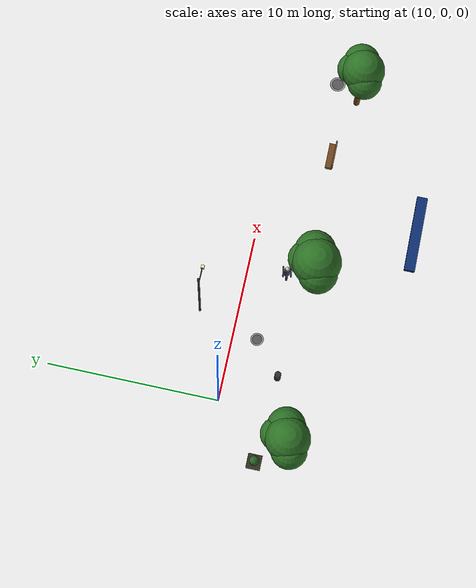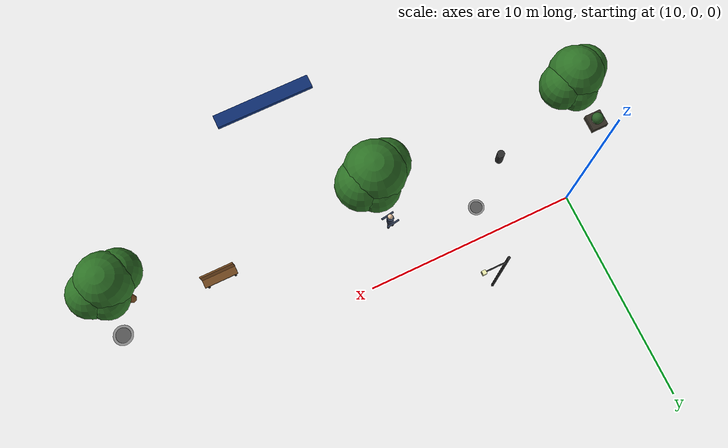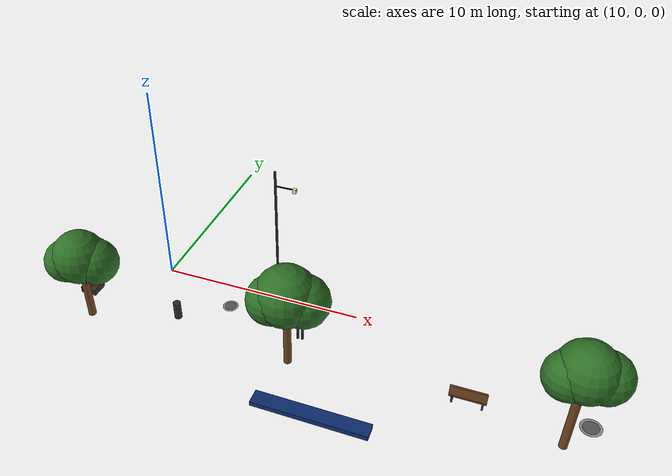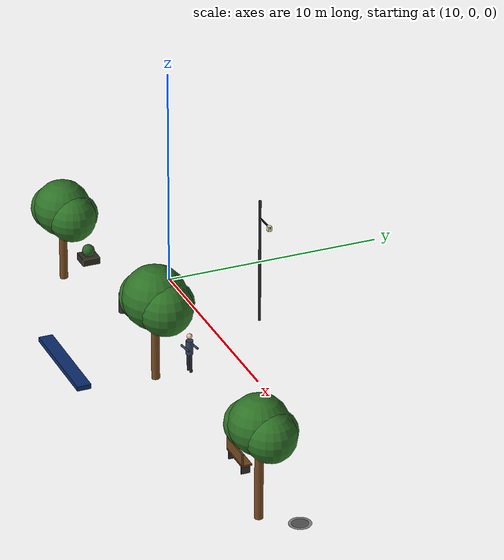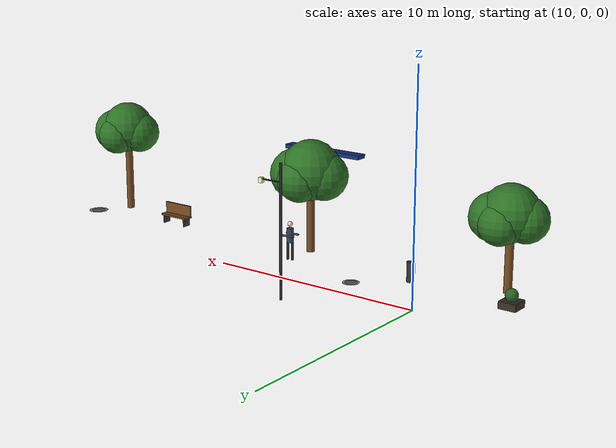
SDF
<sdf version="1.6">
 <world name="sidewalk_avenue">
  <model name="tree_1">
   <pose>8.000 -4.250 0.000 0.000 0.000 0.000</pose>
   <static>true</static>
   <link name="link">
    <collision name="cylinder_trunk_collision">
     <pose>0.000 0.000 1.500 0.000 0.000 0.000</pose>
     <geometry><cylinder><radius>0.180</radius><length>3.000</length></cylinder></geometry>
    </collision>
    <visual name="cylinder_trunk_visual">
     <pose>0.000 0.000 1.500 0.000 0.000 0.000</pose>
     <geometry><cylinder><radius>0.180</radius><length>3.000</length></cylinder></geometry>
     <material>
      <ambient>0.360 0.224 0.096 1.000</ambient>
      <diffuse>0.450 0.280 0.120 1.000</diffuse>
      <specular>0.050 0.050 0.050 1.000</specular>
     </material>
    </visual>
    <visual name="canopy_visual_0">
     <pose>0.000 0.000 3.480 0.000 0.000 0.000</pose>
     <geometry><sphere><radius>1.250</radius></sphere></geometry>
     <material>
      <ambient>0.144 0.360 0.120 1.000</ambient>
      <diffuse>0.180 0.450 0.150 1.000</diffuse>
      <specular>0.050 0.050 0.050 1.000</specular>
     </material>
    </visual>
    <visual name="canopy_visual_1">
     <pose>0.700 0.200 3.240 0.000 0.000 0.000</pose>
     <geometry><sphere><radius>1.062</radius></sphere></geometry>
     <material>
      <ambient>0.144 0.360 0.120 1.000</ambient>
      <diffuse>0.180 0.450 0.150 1.000</diffuse>
      <specular>0.050 0.050 0.050 1.000</specular>
     </material>
    </visual>
    <visual name="canopy_visual_2">
     <pose>-0.600 -0.200 3.240 0.000 0.000 0.000</pose>
     <geometry><sphere><radius>1.000</radius></sphere></geometry>
     <material>
      <ambient>0.144 0.360 0.120 1.000</ambient>
      <diffuse>0.180 0.450 0.150 1.000</diffuse>
      <specular>0.050 0.050 0.050 1.000</specular>
     </material>
    </visual>
    <visual name="canopy_visual_3">
     <pose>0.200 0.600 3.120 0.000 0.000 0.000</pose>
     <geometry><sphere><radius>0.938</radius></sphere></geometry>
     <material>
      <ambient>0.144 0.360 0.120 1.000</ambient>
      <diffuse>0.180 0.450 0.150 1.000</diffuse>
      <specular>0.050 0.050 0.050 1.000</specular>
     </material>
    </visual>
    <collision name="canopy_collision">
     <pose>0.000 0.000 3.360 0.000 0.000 0.000</pose>
     <geometry><sphere><radius>1.500</radius></sphere></geometry>
    </collision>
   </link>
   <plugin filename="gz-sim-label-system" name="gz::sim::systems::Label"><label>9</label></plugin>
  </model>
  <model name="tree_2">
   <pose>18.000 -3.850 0.000 0.000 0.000 0.000</pose>
   <static>true</static>
   <link name="link">
    <collision name="cylinder_trunk_collision">
     <pose>0.000 0.000 1.700 0.000 0.000 0.000</pose>
     <geometry><cylinder><radius>0.180</radius><length>3.400</length></cylinder></geometry>
    </collision>
    <visual name="cylinder_trunk_visual">
     <pose>0.000 0.000 1.700 0.000 0.000 0.000</pose>
     <geometry><cylinder><radius>0.180</radius><length>3.400</length></cylinder></geometry>
     <material>
      <ambient>0.360 0.224 0.096 1.000</ambient>
      <diffuse>0.450 0.280 0.120 1.000</diffuse>
      <specular>0.050 0.050 0.050 1.000</specular>
     </material>
    </visual>
    <visual name="canopy_visual_0">
     <pose>0.000 0.000 3.880 0.000 0.000 0.000</pose>
     <geometry><sphere><radius>1.400</radius></sphere></geometry>
     <material>
      <ambient>0.144 0.360 0.120 1.000</ambient>
      <diffuse>0.180 0.450 0.150 1.000</diffuse>
      <specular>0.050 0.050 0.050 1.000</specular>
     </material>
    </visual>
    <visual name="canopy_visual_1">
     <pose>0.700 0.200 3.640 0.000 0.000 0.000</pose>
     <geometry><sphere><radius>1.190</radius></sphere></geometry>
     <material>
      <ambient>0.144 0.360 0.120 1.000</ambient>
      <diffuse>0.180 0.450 0.150 1.000</diffuse>
      <specular>0.050 0.050 0.050 1.000</specular>
     </material>
    </visual>
    <visual name="canopy_visual_2">
     <pose>-0.600 -0.200 3.640 0.000 0.000 0.000</pose>
     <geometry><sphere><radius>1.120</radius></sphere></geometry>
     <material>
      <ambient>0.144 0.360 0.120 1.000</ambient>
      <diffuse>0.180 0.450 0.150 1.000</diffuse>
      <specular>0.050 0.050 0.050 1.000</specular>
     </material>
    </visual>
    <visual name="canopy_visual_3">
     <pose>0.200 0.600 3.520 0.000 0.000 0.000</pose>
     <geometry><sphere><radius>1.050</radius></sphere></geometry>
     <material>
      <ambient>0.144 0.360 0.120 1.000</ambient>
      <diffuse>0.180 0.450 0.150 1.000</diffuse>
      <specular>0.050 0.050 0.050 1.000</specular>
     </material>
    </visual>
    <collision name="canopy_collision">
     <pose>0.000 0.000 3.760 0.000 0.000 0.000</pose>
     <geometry><sphere><radius>1.680</radius></sphere></geometry>
    </collision>
   </link>
   <plugin filename="gz-sim-label-system" name="gz::sim::systems::Label"><label>9</label></plugin>
  </model>
  <model name="tree_3">
   <pose>30.000 -4.250 0.000 0.000 0.000 0.000</pose>
   <static>true</static>
   <link name="link">
    <collision name="cylinder_trunk_collision">
     <pose>0.000 0.000 1.900 0.000 0.000 0.000</pose>
     <geometry><cylinder><radius>0.180</radius><length>3.800</length></cylinder></geometry>
    </collision>
    <visual name="cylinder_trunk_visual">
     <pose>0.000 0.000 1.900 0.000 0.000 0.000</pose>
     <geometry><cylinder><radius>0.180</radius><length>3.800</length></cylinder></geometry>
     <material>
      <ambient>0.360 0.224 0.096 1.000</ambient>
      <diffuse>0.450 0.280 0.120 1.000</diffuse>
      <specular>0.050 0.050 0.050 1.000</specular>
     </material>
    </visual>
    <visual name="canopy_visual_0">
     <pose>0.000 0.000 4.280 0.000 0.000 0.000</pose>
     <geometry><sphere><radius>1.250</radius></sphere></geometry>
     <material>
      <ambient>0.144 0.360 0.120 1.000</ambient>
      <diffuse>0.180 0.450 0.150 1.000</diffuse>
      <specular>0.050 0.050 0.050 1.000</specular>
     </material>
    </visual>
    <visual name="canopy_visual_1">
     <pose>0.700 0.200 4.040 0.000 0.000 0.000</pose>
     <geometry><sphere><radius>1.062</radius></sphere></geometry>
     <material>
      <ambient>0.144 0.360 0.120 1.000</ambient>
      <diffuse>0.180 0.450 0.150 1.000</diffuse>
      <specular>0.050 0.050 0.050 1.000</specular>
     </material>
    </visual>
    <visual name="canopy_visual_2">
     <pose>-0.600 -0.200 4.040 0.000 0.000 0.000</pose>
     <geometry><sphere><radius>1.000</radius></sphere></geometry>
     <material>
      <ambient>0.144 0.360 0.120 1.000</ambient>
      <diffuse>0.180 0.450 0.150 1.000</diffuse>
      <specular>0.050 0.050 0.050 1.000</specular>
     </material>
    </visual>
    <visual name="canopy_visual_3">
     <pose>0.200 0.600 3.920 0.000 0.000 0.000</pose>
     <geometry><sphere><radius>0.938</radius></sphere></geometry>
     <material>
      <ambient>0.144 0.360 0.120 1.000</ambient>
      <diffuse>0.180 0.450 0.150 1.000</diffuse>
      <specular>0.050 0.050 0.050 1.000</specular>
     </material>
    </visual>
    <collision name="canopy_collision">
     <pose>0.000 0.000 4.160 0.000 0.000 0.000</pose>
     <geometry><sphere><radius>1.500</radius></sphere></geometry>
    </collision>
   </link>
   <plugin filename="gz-sim-label-system" name="gz::sim::systems::Label"><label>9</label></plugin>
  </model>
  <model name="lamp_1">
   <pose>15.000 2.200 0.000 0.000 0.000 0.000</pose>
   <static>true</static>
   <link name="link">
    <collision name="pole_collision">
     <pose>0.000 0.000 2.900 0.000 0.000 0.000</pose>
     <geometry><cylinder><radius>0.060</radius><length>5.800</length></cylinder></geometry>
    </collision>
    <visual name="pole_visual">
     <pose>0.000 0.000 2.900 0.000 0.000 0.000</pose>
     <geometry><cylinder><radius>0.060</radius><length>5.800</length></cylinder></geometry>
     <material>
      <ambient>0.120 0.120 0.120 1.000</ambient>
      <diffuse>0.150 0.150 0.150 1.000</diffuse>
      <specular>0.050 0.050 0.050 1.000</specular>
     </material>
    </visual>
    <visual name="arm_visual">
     <pose>0.550 0.000 5.000 0.000 0.000 0.000</pose>
     <geometry><box><size>1.100 0.050 0.050</size></box></geometry>
     <material>
      <ambient>0.120 0.120 0.120 1.000</ambient>
      <diffuse>0.150 0.150 0.150 1.000</diffuse>
      <specular>0.050 0.050 0.050 1.000</specular>
     </material>
    </visual>
    <visual name="lamp_visual">
     <pose>1.000 0.000 4.950 0.000 0.000 0.000</pose>
     <geometry><box><size>0.180 0.180 0.220</size></box></geometry>
     <material>
      <ambient>0.760 0.760 0.560 1.000</ambient>
      <diffuse>0.950 0.950 0.700 1.000</diffuse>
      <specular>0.050 0.050 0.050 1.000</specular>
     </material>
    </visual>
   </link>
   <plugin filename="gz-sim-label-system" name="gz::sim::systems::Label"><label>6</label></plugin>
  </model>
  <model name="bench_1">
   <pose>26.000 -3.400 0.000 0.000 0.000 0.000</pose>
   <static>true</static>
   <link name="link">
    <collision name="seat_collision">
     <pose>0.000 0.000 0.420 0.000 0.000 0.000</pose>
     <geometry><box><size>1.600 0.450 0.080</size></box></geometry>
    </collision>
    <visual name="seat_visual">
     <pose>0.000 0.000 0.420 0.000 0.000 0.000</pose>
     <geometry><box><size>1.600 0.450 0.080</size></box></geometry>
     <material>
      <ambient>0.360 0.224 0.096 1.000</ambient>
      <diffuse>0.450 0.280 0.120 1.000</diffuse>
      <specular>0.050 0.050 0.050 1.000</specular>
     </material>
    </visual>
    <collision name="back_collision">
     <pose>0.000 -0.180 0.720 0.000 0.000 0.000</pose>
     <geometry><box><size>1.600 0.080 0.550</size></box></geometry>
    </collision>
    <visual name="back_visual">
     <pose>0.000 -0.180 0.720 0.000 0.000 0.000</pose>
     <geometry><box><size>1.600 0.080 0.550</size></box></geometry>
     <material>
      <ambient>0.360 0.224 0.096 1.000</ambient>
      <diffuse>0.450 0.280 0.120 1.000</diffuse>
      <specular>0.050 0.050 0.050 1.000</specular>
     </material>
    </visual>
    <collision name="leg1_collision">
     <pose>-0.650 0.000 0.225 0.000 0.000 0.000</pose>
     <geometry><box><size>0.080 0.400 0.450</size></box></geometry>
    </collision>
    <visual name="leg1_visual">
     <pose>-0.650 0.000 0.225 0.000 0.000 0.000</pose>
     <geometry><box><size>0.080 0.400 0.450</size></box></geometry>
     <material>
      <ambient>0.160 0.160 0.160 1.000</ambient>
      <diffuse>0.200 0.200 0.200 1.000</diffuse>
      <specular>0.050 0.050 0.050 1.000</specular>
     </material>
    </visual>
    <collision name="leg2_collision">
     <pose>0.650 0.000 0.225 0.000 0.000 0.000</pose>
     <geometry><box><size>0.080 0.400 0.450</size></box></geometry>
    </collision>
    <visual name="leg2_visual">
     <pose>0.650 0.000 0.225 0.000 0.000 0.000</pose>
     <geometry><box><size>0.080 0.400 0.450</size></box></geometry>
     <material>
      <ambient>0.160 0.160 0.160 1.000</ambient>
      <diffuse>0.200 0.200 0.200 1.000</diffuse>
      <specular>0.050 0.050 0.050 1.000</specular>
     </material>
    </visual>
   </link>
   <plugin filename="gz-sim-label-system" name="gz::sim::systems::Label"><label>3</label></plugin>
  </model>
  <model name="trash_1">
   <pose>12.000 -3.000 0.000 0.000 0.000 0.000</pose>
   <static>true</static>
   <link name="link">
    <collision name="bin_collision">
     <pose>0.000 0.000 0.450 0.000 0.000 0.000</pose>
     <geometry><cylinder><radius>0.180</radius><length>0.900</length></cylinder></geometry>
    </collision>
    <visual name="bin_visual">
     <pose>0.000 0.000 0.450 0.000 0.000 0.000</pose>
     <geometry><cylinder><radius>0.180</radius><length>0.900</length></cylinder></geometry>
     <material>
      <ambient>0.144 0.144 0.144 1.000</ambient>
      <diffuse>0.180 0.180 0.180 1.000</diffuse>
      <specular>0.050 0.050 0.050 1.000</specular>
     </material>
    </visual>
   </link>
   <plugin filename="gz-sim-label-system" name="gz::sim::systems::Label"><label>3</label></plugin>
  </model>
  <model name="awning_1">
   <pose>21.000 -9.000 3.400 0.000 0.000 0.000</pose>
   <static>true</static>
   <link name="link">
    <visual name="awning_visual">
     <geometry><box><size>4.500 0.600 0.200</size></box></geometry>
     <material>
      <ambient>0.040 0.144 0.360 1.000</ambient>
      <diffuse>0.050 0.180 0.450 1.000</diffuse>
      <specular>0.050 0.050 0.050 1.000</specular>
     </material>
    </visual>
   </link>
   <plugin filename="gz-sim-label-system" name="gz::sim::systems::Label"><label>3</label></plugin>
  </model>
  <model name="person_1">
   <pose>18.000 -2.300 0.000 0.000 0.000 0.150</pose>
   <static>true</static>
   <link name="link">
    <collision name="leg0_collision">
     <pose>-0.110 0.000 0.430 0.000 0.000 0.000</pose>
     <geometry><cylinder><radius>0.060</radius><length>0.860</length></cylinder></geometry>
    </collision>
    <visual name="leg0_visual">
     <pose>-0.110 0.000 0.430 0.000 0.000 0.000</pose>
     <geometry><cylinder><radius>0.060</radius><length>0.860</length></cylinder></geometry>
     <material>
      <ambient>0.120 0.120 0.144 1.000</ambient>
      <diffuse>0.150 0.150 0.180 1.000</diffuse>
      <specular>0.050 0.050 0.050 1.000</specular>
     </material>
    </visual>
    <collision name="leg1_collision">
     <pose>0.110 0.000 0.430 0.000 0.000 0.000</pose>
     <geometry><cylinder><radius>0.060</radius><length>0.860</length></cylinder></geometry>
    </collision>
    <visual name="leg1_visual">
     <pose>0.110 0.000 0.430 0.000 0.000 0.000</pose>
     <geometry><cylinder><radius>0.060</radius><length>0.860</length></cylinder></geometry>
     <material>
      <ambient>0.120 0.120 0.144 1.000</ambient>
      <diffuse>0.150 0.150 0.180 1.000</diffuse>
      <specular>0.050 0.050 0.050 1.000</specular>
     </material>
    </visual>
    <collision name="torso_collision">
     <pose>0.000 0.000 1.150 0.000 0.000 0.000</pose>
     <geometry><cylinder><radius>0.160</radius><length>0.650</length></cylinder></geometry>
    </collision>
    <visual name="torso_visual">
     <pose>0.000 0.000 1.150 0.000 0.000 0.000</pose>
     <geometry><cylinder><radius>0.160</radius><length>0.650</length></cylinder></geometry>
     <material>
      <ambient>0.160 0.200 0.280 1.000</ambient>
      <diffuse>0.200 0.250 0.350 1.000</diffuse>
      <specular>0.050 0.050 0.050 1.000</specular>
     </material>
    </visual>
    <collision name="head_collision">
     <pose>0.000 0.000 1.680 0.000 0.000 0.000</pose>
     <geometry><sphere><radius>0.120</radius></sphere></geometry>
    </collision>
    <visual name="head_visual">
     <pose>0.000 0.000 1.680 0.000 0.000 0.000</pose>
     <geometry><sphere><radius>0.120</radius></sphere></geometry>
     <material>
      <ambient>0.760 0.640 0.520 1.000</ambient>
      <diffuse>0.950 0.800 0.650 1.000</diffuse>
      <specular>0.050 0.050 0.050 1.000</specular>
     </material>
    </visual>
    <collision name="arm0_collision">
     <pose>0.000 -0.220 1.160 0.000 1.571 0.000</pose>
     <geometry><cylinder><radius>0.045</radius><length>0.620</length></cylinder></geometry>
    </collision>
    <visual name="arm0_visual">
     <pose>0.000 -0.220 1.160 0.000 1.571 0.000</pose>
     <geometry><cylinder><radius>0.045</radius><length>0.620</length></cylinder></geometry>
     <material>
      <ambient>0.160 0.200 0.280 1.000</ambient>
      <diffuse>0.200 0.250 0.350 1.000</diffuse>
      <specular>0.050 0.050 0.050 1.000</specular>
     </material>
    </visual>
    <collision name="arm1_collision">
     <pose>0.000 0.220 1.160 0.000 1.571 0.000</pose>
     <geometry><cylinder><radius>0.045</radius><length>0.620</length></cylinder></geometry>
    </collision>
    <visual name="arm1_visual">
     <pose>0.000 0.220 1.160 0.000 1.571 0.000</pose>
     <geometry><cylinder><radius>0.045</radius><length>0.620</length></cylinder></geometry>
     <material>
      <ambient>0.160 0.200 0.280 1.000</ambient>
      <diffuse>0.200 0.250 0.350 1.000</diffuse>
      <specular>0.050 0.050 0.050 1.000</specular>
     </material>
    </visual>
   </link>
   <plugin filename="gz-sim-label-system" name="gz::sim::systems::Label"><label>12</label></plugin>
  </model>
  <model name="pothole_1">
   <pose>14.000 -1.400 0.000 0.000 0.000 0.000</pose>
   <static>true</static>
   <link name="link">
    <visual name="visual">
     <pose>0.000 0.000 -0.018 0.000 0.000 0.000</pose>
     <geometry><cylinder><radius>0.280</radius><length>0.010</length></cylinder></geometry>
     <material>
      <ambient>0.280 0.280 0.280 1.000</ambient>
      <diffuse>0.350 0.350 0.350 1.000</diffuse>
      <specular>0.050 0.050 0.050 1.000</specular>
     </material>
    </visual>
    <visual name="visual_patch">
     <pose>0.000 0.000 -0.016 0.000 0.000 0.000</pose>
     <geometry><cylinder><radius>0.378</radius><length>0.004</length></cylinder></geometry>
     <material>
      <ambient>0.440 0.440 0.440 1.000</ambient>
      <diffuse>0.550 0.550 0.550 1.000</diffuse>
      <specular>0.050 0.050 0.050 1.000</specular>
     </material>
    </visual>
   </link>
   <plugin filename="gz-sim-label-system" name="gz::sim::systems::Label"><label>1</label></plugin>
  </model>
  <model name="pothole_2">
   <pose>31.000 -2.900 0.000 0.000 0.000 0.000</pose>
   <static>true</static>
   <link name="link">
    <visual name="visual">
     <pose>0.000 0.000 -0.018 0.000 0.000 0.000</pose>
     <geometry><cylinder><radius>0.350</radius><length>0.010</length></cylinder></geometry>
     <material>
      <ambient>0.280 0.280 0.280 1.000</ambient>
      <diffuse>0.350 0.350 0.350 1.000</diffuse>
      <specular>0.050 0.050 0.050 1.000</specular>
     </material>
    </visual>
    <visual name="visual_patch">
     <pose>0.000 0.000 -0.016 0.000 0.000 0.000</pose>
     <geometry><cylinder><radius>0.473</radius><length>0.004</length></cylinder></geometry>
     <material>
      <ambient>0.440 0.440 0.440 1.000</ambient>
      <diffuse>0.550 0.550 0.550 1.000</diffuse>
      <specular>0.050 0.050 0.050 1.000</specular>
     </material>
    </visual>
   </link>
   <plugin filename="gz-sim-label-system" name="gz::sim::systems::Label"><label>1</label></plugin>
  </model>
  <model name="planter_1">
   <pose>7.000 -2.700 0.160 0.000 0.000 0.000</pose>
   <static>true</static>
   <link name="link">
    <collision name="collision"><geometry><box><size>0.800 0.800 0.320</size></box></geometry></collision>
    <visual name="visual">
     <geometry><box><size>0.800 0.800 0.320</size></box></geometry>
     <material>
      <ambient>0.160 0.144 0.112 1.000</ambient>
      <diffuse>0.200 0.180 0.140 1.000</diffuse>
      <specular>0.050 0.050 0.050 1.000</specular>
     </material>
    </visual>
   </link>
   <plugin filename="gz-sim-label-system" name="gz::sim::systems::Label"><label>3</label></plugin>
  </model>
  <model name="shrub_1">
   <pose>7.000 -2.700 0.550 0.000 0.000 0.000</pose>
   <static>true</static>
   <link name="link">
    <collision name="collision"><geometry><sphere><radius>0.280</radius></sphere></geometry></collision>
    <visual name="visual">
     <geometry><sphere><radius>0.280</radius></sphere></geometry>
     <material>
      <ambient>0.136 0.304 0.120 1.000</ambient>
      <diffuse>0.170 0.380 0.150 1.000</diffuse>
      <specular>0.050 0.050 0.050 1.000</specular>
     </material>
    </visual>
   </link>
   <plugin filename="gz-sim-label-system" name="gz::sim::systems::Label"><label>9</label></plugin>
  </model>
 </world>
</sdf>
